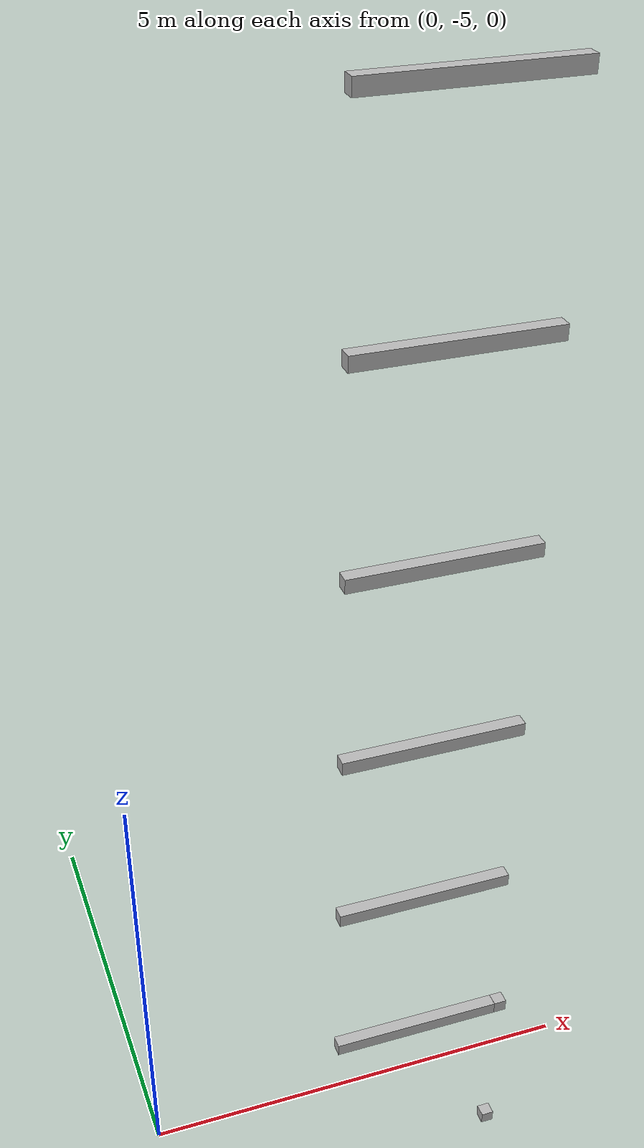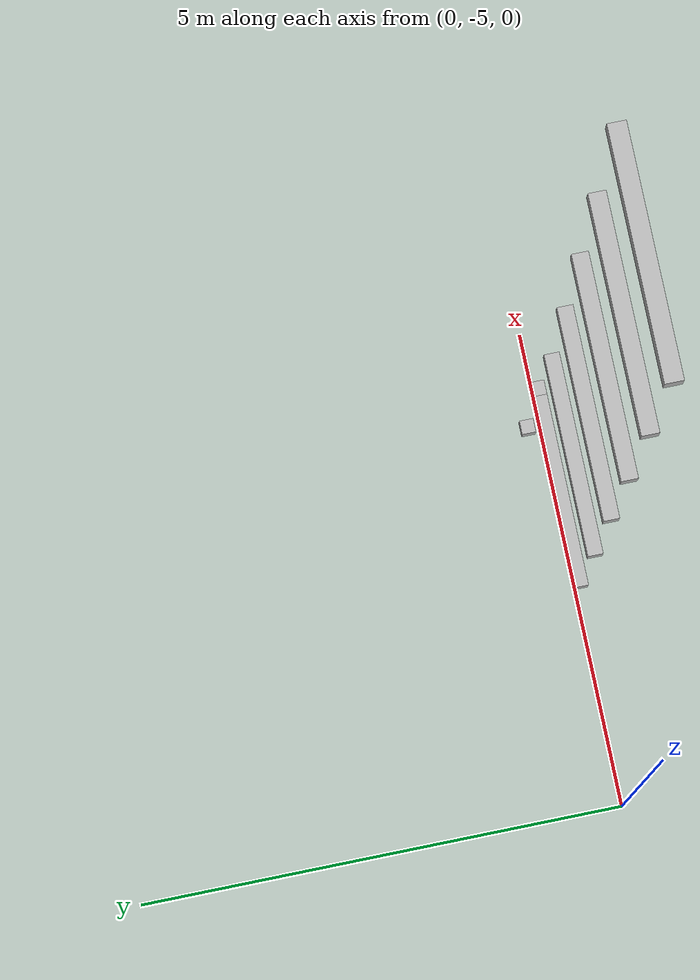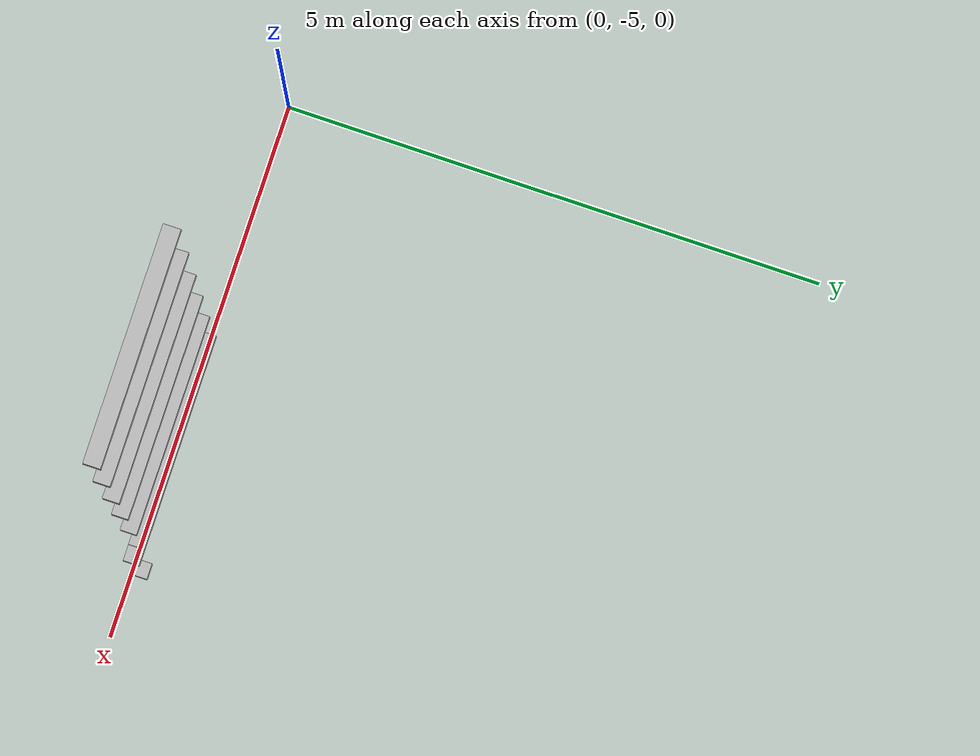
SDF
<sdf version="1.7">
 <world name="default">
  <model name="orthogonal_747_2.000.15_TS">
   <static>1</static>
   <link name="u_link_0_0_5">
    <inertial>
     <mass>1</mass>
     <inertia>
      <ixx>0.166667</ixx>
      <ixy>0</ixy>
      <ixz>0</ixz>
      <iyy>0.166667</iyy>
      <iyz>0</iyz>
      <izz>0.166667</izz>
     </inertia>
    </inertial>
    <pose>10.75 0 1.075 0 -0 0</pose>
    <visual name="visual_0">
     <laser_retro>120</laser_retro>
     <geometry><box><size>0.15 1e-06 0.15</size></box></geometry>
     <material>
      <script><name>Gazebo/Grey</name><uri>file://media/materials/scripts/gazebo.material</uri></script>
      <shader type="pixel"><normal_map>__default__</normal_map></shader>
      <ambient>0.678 0.498 0.659 1</ambient>
      <diffuse>0.7 0.7 0.7 1</diffuse>
      <specular>0.01 0.01 0.01 1</specular>
      <emissive>0 0 0 1</emissive>
     </material>
     <pose>0 -0.075 0 0 -0 0</pose>
     <transparency>1</transparency>
    </visual>
    <visual name="visual_1">
     <laser_retro>121</laser_retro>
     <geometry><box><size>0.15 1e-06 0.15</size></box></geometry>
     <material>
      <script><name>Gazebo/Grey</name><uri>file://media/materials/scripts/gazebo.material</uri></script>
      <shader type="pixel"><normal_map>__default__</normal_map></shader>
      <ambient>0.447 0.624 0.812 1</ambient>
      <diffuse>0.7 0.7 0.7 1</diffuse>
      <specular>0.01 0.01 0.01 1</specular>
      <emissive>0 0 0 1</emissive>
     </material>
     <pose>0 0.075 0 0 -0 0</pose>
     <transparency>1</transparency>
    </visual>
    <visual name="visual_2">
     <laser_retro>122</laser_retro>
     <geometry><box><size>0.15 0.15 1e-06</size></box></geometry>
     <material>
      <script><name>Gazebo/Grey</name><uri>file://media/materials/scripts/gazebo.material</uri></script>
      <shader type="pixel"><normal_map>__default__</normal_map></shader>
      <ambient>0.988 0.686 0.243 1</ambient>
      <diffuse>0.7 0.7 0.7 1</diffuse>
      <specular>0.01 0.01 0.01 1</specular>
      <emissive>0 0 0 1</emissive>
     </material>
     <pose>0 0 -0.075 0 -0 0</pose>
     <transparency>1</transparency>
    </visual>
    <visual name="visual_3">
     <laser_retro>123</laser_retro>
     <geometry><box><size>1e-06 0.15 0.15</size></box></geometry>
     <material>
      <script><name>Gazebo/Grey</name><uri>file://media/materials/scripts/gazebo.material</uri></script>
      <shader type="pixel"><normal_map>__default__</normal_map></shader>
      <ambient>0.988 0.914 0.31 1</ambient>
      <diffuse>0.7 0.7 0.7 1</diffuse>
      <specular>0.01 0.01 0.01 1</specular>
      <emissive>0 0 0 1</emissive>
     </material>
     <pose>0.075 0 0 0 -0 0</pose>
     <transparency>1</transparency>
    </visual>
    <visual name="visual_4">
     <laser_retro>124</laser_retro>
     <geometry><box><size>0.15 0.15 1e-06</size></box></geometry>
     <material>
      <script><name>Gazebo/Grey</name><uri>file://media/materials/scripts/gazebo.material</uri></script>
      <shader type="pixel"><normal_map>__default__</normal_map></shader>
      <ambient>0.937 0.161 0.161 1</ambient>
      <diffuse>0.7 0.7 0.7 1</diffuse>
      <specular>0.01 0.01 0.01 1</specular>
      <emissive>0 0 0 1</emissive>
     </material>
     <pose>0 0 0.075 0 -0 0</pose>
     <transparency>1</transparency>
    </visual>
    <visual name="visual_5">
     <laser_retro>125</laser_retro>
     <geometry><box><size>1e-06 0.15 0.15</size></box></geometry>
     <material>
      <script><name>Gazebo/Grey</name><uri>file://media/materials/scripts/gazebo.material</uri></script>
      <shader type="pixel"><normal_map>__default__</normal_map></shader>
      <ambient>0.541 0.886 0.204 1</ambient>
      <diffuse>0.7 0.7 0.7 1</diffuse>
      <specular>0.01 0.01 0.01 1</specular>
      <emissive>0 0 0 1</emissive>
     </material>
     <pose>-0.075 0 0 0 -0 0</pose>
     <transparency>1</transparency>
    </visual>
    <visual name="visual_texture">
     <geometry><box><size>0.149985 0.149985 0.149985</size></box></geometry>
     <material>
      <script>
       <uri>model://BASE_MODELS/simple_block_v2_textured/materials/scripts</uri>
       <uri>model://BASE_MODELS/simple_block_v2_textured/materials/textures</uri>
       <name>metal</name>
      </script>
     </material>
     <laser_retro>126</laser_retro>
    </visual>
    <collision name="collision">
     <geometry><box><size>0.15 0.15 0.15</size></box></geometry>
     <surface>
      <friction>
       <ode><mu>1</mu><mu2>1</mu2><fdir1>0 0 0</fdir1><slip1>0</slip1><slip2>0</slip2></ode>
       <torsional>
        <coefficient>1</coefficient>
        <patch_radius>0</patch_radius>
        <surface_radius>0</surface_radius>
        <use_patch_radius>1</use_patch_radius>
        <ode><slip>0</slip></ode>
       </torsional>
      </friction>
      <bounce><restitution_coefficient>0</restitution_coefficient><threshold>1e+06</threshold></bounce>
      <contact>
       <collide_without_contact>0</collide_without_contact>
       <collide_without_contact_bitmask>1</collide_without_contact_bitmask>
       <collide_bitmask>1</collide_bitmask>
       <ode>
        <soft_cfm>0</soft_cfm>
        <soft_erp>0.2</soft_erp>
        <kp>1e+13</kp>
        <kd>1</kd>
        <max_vel>0.01</max_vel>
        <min_depth>0</min_depth>
       </ode>
       <bullet>
        <split_impulse>1</split_impulse>
        <split_impulse_penetration_threshold>-0.01</split_impulse_penetration_threshold>
        <soft_cfm>0</soft_cfm>
        <soft_erp>0.2</soft_erp>
        <kp>1e+13</kp>
        <kd>1</kd>
       </bullet>
      </contact>
     </surface>
    </collision>
   </link>
   <link name="x_link_1_0_4">
    <inertial>
     <mass>1</mass>
     <inertia>
      <ixx>0.166667</ixx>
      <ixy>0</ixy>
      <ixz>0</ixz>
      <iyy>0.166667</iyy>
      <iyz>0</iyz>
      <izz>0.166667</izz>
     </inertia>
    </inertial>
    <pose>9.675 0 3.225 0 -0 0</pose>
    <visual name="visual_0">
     <laser_retro>862</laser_retro>
     <geometry><box><size>2 1e-06 0.15</size></box></geometry>
     <material>
      <script><name>Gazebo/Grey</name><uri>file://media/materials/scripts/gazebo.material</uri></script>
      <shader type="pixel"><normal_map>__default__</normal_map></shader>
      <ambient>0.678 0.498 0.659 1</ambient>
      <diffuse>0.7 0.7 0.7 1</diffuse>
      <specular>0.01 0.01 0.01 1</specular>
      <emissive>0 0 0 1</emissive>
     </material>
     <pose>0 -0.075 0 0 -0 0</pose>
     <transparency>1</transparency>
    </visual>
    <visual name="visual_1">
     <laser_retro>863</laser_retro>
     <geometry><box><size>2 1e-06 0.15</size></box></geometry>
     <material>
      <script><name>Gazebo/Grey</name><uri>file://media/materials/scripts/gazebo.material</uri></script>
      <shader type="pixel"><normal_map>__default__</normal_map></shader>
      <ambient>0.447 0.624 0.812 1</ambient>
      <diffuse>0.7 0.7 0.7 1</diffuse>
      <specular>0.01 0.01 0.01 1</specular>
      <emissive>0 0 0 1</emissive>
     </material>
     <pose>0 0.075 0 0 -0 0</pose>
     <transparency>1</transparency>
    </visual>
    <visual name="visual_2">
     <laser_retro>864</laser_retro>
     <geometry><box><size>2 0.15 1e-06</size></box></geometry>
     <material>
      <script><name>Gazebo/Grey</name><uri>file://media/materials/scripts/gazebo.material</uri></script>
      <shader type="pixel"><normal_map>__default__</normal_map></shader>
      <ambient>0.988 0.686 0.243 1</ambient>
      <diffuse>0.7 0.7 0.7 1</diffuse>
      <specular>0.01 0.01 0.01 1</specular>
      <emissive>0 0 0 1</emissive>
     </material>
     <pose>0 0 -0.075 0 -0 0</pose>
     <transparency>1</transparency>
    </visual>
    <visual name="visual_3">
     <laser_retro>865</laser_retro>
     <geometry><box><size>1e-06 0.15 0.15</size></box></geometry>
     <material>
      <script><name>Gazebo/Grey</name><uri>file://media/materials/scripts/gazebo.material</uri></script>
      <shader type="pixel"><normal_map>__default__</normal_map></shader>
      <ambient>0.988 0.914 0.31 1</ambient>
      <diffuse>0.7 0.7 0.7 1</diffuse>
      <specular>0.01 0.01 0.01 1</specular>
      <emissive>0 0 0 1</emissive>
     </material>
     <pose>1 0 0 0 -0 0</pose>
     <transparency>1</transparency>
    </visual>
    <visual name="visual_4">
     <laser_retro>866</laser_retro>
     <geometry><box><size>2 0.15 1e-06</size></box></geometry>
     <material>
      <script><name>Gazebo/Grey</name><uri>file://media/materials/scripts/gazebo.material</uri></script>
      <shader type="pixel"><normal_map>__default__</normal_map></shader>
      <ambient>0.937 0.161 0.161 1</ambient>
      <diffuse>0.7 0.7 0.7 1</diffuse>
      <specular>0.01 0.01 0.01 1</specular>
      <emissive>0 0 0 1</emissive>
     </material>
     <pose>0 0 0.075 0 -0 0</pose>
     <transparency>1</transparency>
    </visual>
    <visual name="visual_5">
     <laser_retro>867</laser_retro>
     <geometry><box><size>1e-06 0.15 0.15</size></box></geometry>
     <material>
      <script><name>Gazebo/Grey</name><uri>file://media/materials/scripts/gazebo.material</uri></script>
      <shader type="pixel"><normal_map>__default__</normal_map></shader>
      <ambient>0.541 0.886 0.204 1</ambient>
      <diffuse>0.7 0.7 0.7 1</diffuse>
      <specular>0.01 0.01 0.01 1</specular>
      <emissive>0 0 0 1</emissive>
     </material>
     <pose>-1 0 0 0 -0 0</pose>
     <transparency>1</transparency>
    </visual>
    <visual name="visual_texture">
     <geometry><box><size>1.9998 0.149985 0.149985</size></box></geometry>
     <material>
      <script>
       <uri>model://BASE_MODELS/simple_block_v2_textured/materials/scripts</uri>
       <uri>model://BASE_MODELS/simple_block_v2_textured/materials/textures</uri>
       <name>metal</name>
      </script>
     </material>
     <laser_retro>868</laser_retro>
    </visual>
    <collision name="collision">
     <geometry><box><size>2 0.15 0.15</size></box></geometry>
     <surface>
      <friction>
       <ode><mu>1</mu><mu2>1</mu2><fdir1>0 0 0</fdir1><slip1>0</slip1><slip2>0</slip2></ode>
       <torsional>
        <coefficient>1</coefficient>
        <patch_radius>0</patch_radius>
        <surface_radius>0</surface_radius>
        <use_patch_radius>1</use_patch_radius>
        <ode><slip>0</slip></ode>
       </torsional>
      </friction>
      <bounce><restitution_coefficient>0</restitution_coefficient><threshold>1e+06</threshold></bounce>
      <contact>
       <collide_without_contact>0</collide_without_contact>
       <collide_without_contact_bitmask>1</collide_without_contact_bitmask>
       <collide_bitmask>1</collide_bitmask>
       <ode>
        <soft_cfm>0</soft_cfm>
        <soft_erp>0.2</soft_erp>
        <kp>1e+13</kp>
        <kd>1</kd>
        <max_vel>0.01</max_vel>
        <min_depth>0</min_depth>
       </ode>
       <bullet>
        <split_impulse>1</split_impulse>
        <split_impulse_penetration_threshold>-0.01</split_impulse_penetration_threshold>
        <soft_cfm>0</soft_cfm>
        <soft_erp>0.2</soft_erp>
        <kp>1e+13</kp>
        <kd>1</kd>
       </bullet>
      </contact>
     </surface>
    </collision>
   </link>
   <link name="u_link_1_0_5">
    <inertial>
     <mass>1</mass>
     <inertia>
      <ixx>0.166667</ixx>
      <ixy>0</ixy>
      <ixz>0</ixz>
      <iyy>0.166667</iyy>
      <iyz>0</iyz>
      <izz>0.166667</izz>
     </inertia>
    </inertial>
    <pose>10.75 0 3.225 0 -0 0</pose>
    <visual name="visual_0">
     <laser_retro>904</laser_retro>
     <geometry><box><size>0.15 1e-06 0.15</size></box></geometry>
     <material>
      <script><name>Gazebo/Grey</name><uri>file://media/materials/scripts/gazebo.material</uri></script>
      <shader type="pixel"><normal_map>__default__</normal_map></shader>
      <ambient>0.678 0.498 0.659 1</ambient>
      <diffuse>0.7 0.7 0.7 1</diffuse>
      <specular>0.01 0.01 0.01 1</specular>
      <emissive>0 0 0 1</emissive>
     </material>
     <pose>0 -0.075 0 0 -0 0</pose>
     <transparency>1</transparency>
    </visual>
    <visual name="visual_1">
     <laser_retro>905</laser_retro>
     <geometry><box><size>0.15 1e-06 0.15</size></box></geometry>
     <material>
      <script><name>Gazebo/Grey</name><uri>file://media/materials/scripts/gazebo.material</uri></script>
      <shader type="pixel"><normal_map>__default__</normal_map></shader>
      <ambient>0.447 0.624 0.812 1</ambient>
      <diffuse>0.7 0.7 0.7 1</diffuse>
      <specular>0.01 0.01 0.01 1</specular>
      <emissive>0 0 0 1</emissive>
     </material>
     <pose>0 0.075 0 0 -0 0</pose>
     <transparency>1</transparency>
    </visual>
    <visual name="visual_2">
     <laser_retro>906</laser_retro>
     <geometry><box><size>0.15 0.15 1e-06</size></box></geometry>
     <material>
      <script><name>Gazebo/Grey</name><uri>file://media/materials/scripts/gazebo.material</uri></script>
      <shader type="pixel"><normal_map>__default__</normal_map></shader>
      <ambient>0.988 0.686 0.243 1</ambient>
      <diffuse>0.7 0.7 0.7 1</diffuse>
      <specular>0.01 0.01 0.01 1</specular>
      <emissive>0 0 0 1</emissive>
     </material>
     <pose>0 0 -0.075 0 -0 0</pose>
     <transparency>1</transparency>
    </visual>
    <visual name="visual_3">
     <laser_retro>907</laser_retro>
     <geometry><box><size>1e-06 0.15 0.15</size></box></geometry>
     <material>
      <script><name>Gazebo/Grey</name><uri>file://media/materials/scripts/gazebo.material</uri></script>
      <shader type="pixel"><normal_map>__default__</normal_map></shader>
      <ambient>0.988 0.914 0.31 1</ambient>
      <diffuse>0.7 0.7 0.7 1</diffuse>
      <specular>0.01 0.01 0.01 1</specular>
      <emissive>0 0 0 1</emissive>
     </material>
     <pose>0.075 0 0 0 -0 0</pose>
     <transparency>1</transparency>
    </visual>
    <visual name="visual_4">
     <laser_retro>908</laser_retro>
     <geometry><box><size>0.15 0.15 1e-06</size></box></geometry>
     <material>
      <script><name>Gazebo/Grey</name><uri>file://media/materials/scripts/gazebo.material</uri></script>
      <shader type="pixel"><normal_map>__default__</normal_map></shader>
      <ambient>0.937 0.161 0.161 1</ambient>
      <diffuse>0.7 0.7 0.7 1</diffuse>
      <specular>0.01 0.01 0.01 1</specular>
      <emissive>0 0 0 1</emissive>
     </material>
     <pose>0 0 0.075 0 -0 0</pose>
     <transparency>1</transparency>
    </visual>
    <visual name="visual_5">
     <laser_retro>909</laser_retro>
     <geometry><box><size>1e-06 0.15 0.15</size></box></geometry>
     <material>
      <script><name>Gazebo/Grey</name><uri>file://media/materials/scripts/gazebo.material</uri></script>
      <shader type="pixel"><normal_map>__default__</normal_map></shader>
      <ambient>0.541 0.886 0.204 1</ambient>
      <diffuse>0.7 0.7 0.7 1</diffuse>
      <specular>0.01 0.01 0.01 1</specular>
      <emissive>0 0 0 1</emissive>
     </material>
     <pose>-0.075 0 0 0 -0 0</pose>
     <transparency>1</transparency>
    </visual>
    <visual name="visual_texture">
     <geometry><box><size>0.149985 0.149985 0.149985</size></box></geometry>
     <material>
      <script>
       <uri>model://BASE_MODELS/simple_block_v2_textured/materials/scripts</uri>
       <uri>model://BASE_MODELS/simple_block_v2_textured/materials/textures</uri>
       <name>metal</name>
      </script>
     </material>
     <laser_retro>910</laser_retro>
    </visual>
    <collision name="collision">
     <geometry><box><size>0.15 0.15 0.15</size></box></geometry>
     <surface>
      <friction>
       <ode><mu>1</mu><mu2>1</mu2><fdir1>0 0 0</fdir1><slip1>0</slip1><slip2>0</slip2></ode>
       <torsional>
        <coefficient>1</coefficient>
        <patch_radius>0</patch_radius>
        <surface_radius>0</surface_radius>
        <use_patch_radius>1</use_patch_radius>
        <ode><slip>0</slip></ode>
       </torsional>
      </friction>
      <bounce><restitution_coefficient>0</restitution_coefficient><threshold>1e+06</threshold></bounce>
      <contact>
       <collide_without_contact>0</collide_without_contact>
       <collide_without_contact_bitmask>1</collide_without_contact_bitmask>
       <collide_bitmask>1</collide_bitmask>
       <ode>
        <soft_cfm>0</soft_cfm>
        <soft_erp>0.2</soft_erp>
        <kp>1e+13</kp>
        <kd>1</kd>
        <max_vel>0.01</max_vel>
        <min_depth>0</min_depth>
       </ode>
       <bullet>
        <split_impulse>1</split_impulse>
        <split_impulse_penetration_threshold>-0.01</split_impulse_penetration_threshold>
        <soft_cfm>0</soft_cfm>
        <soft_erp>0.2</soft_erp>
        <kp>1e+13</kp>
        <kd>1</kd>
       </bullet>
      </contact>
     </surface>
    </collision>
   </link>
   <link name="x_link_2_0_4">
    <inertial>
     <mass>1</mass>
     <inertia>
      <ixx>0.166667</ixx>
      <ixy>0</ixy>
      <ixz>0</ixz>
      <iyy>0.166667</iyy>
      <iyz>0</iyz>
      <izz>0.166667</izz>
     </inertia>
    </inertial>
    <pose>9.675 0 5.375 0 -0 0</pose>
    <visual name="visual_0">
     <laser_retro>1765</laser_retro>
     <geometry><box><size>2 1e-06 0.15</size></box></geometry>
     <material>
      <script><name>Gazebo/Grey</name><uri>file://media/materials/scripts/gazebo.material</uri></script>
      <shader type="pixel"><normal_map>__default__</normal_map></shader>
      <ambient>0.678 0.498 0.659 1</ambient>
      <diffuse>0.7 0.7 0.7 1</diffuse>
      <specular>0.01 0.01 0.01 1</specular>
      <emissive>0 0 0 1</emissive>
     </material>
     <pose>0 -0.075 0 0 -0 0</pose>
     <transparency>1</transparency>
    </visual>
    <visual name="visual_1">
     <laser_retro>1766</laser_retro>
     <geometry><box><size>2 1e-06 0.15</size></box></geometry>
     <material>
      <script><name>Gazebo/Grey</name><uri>file://media/materials/scripts/gazebo.material</uri></script>
      <shader type="pixel"><normal_map>__default__</normal_map></shader>
      <ambient>0.447 0.624 0.812 1</ambient>
      <diffuse>0.7 0.7 0.7 1</diffuse>
      <specular>0.01 0.01 0.01 1</specular>
      <emissive>0 0 0 1</emissive>
     </material>
     <pose>0 0.075 0 0 -0 0</pose>
     <transparency>1</transparency>
    </visual>
    <visual name="visual_2">
     <laser_retro>1767</laser_retro>
     <geometry><box><size>2 0.15 1e-06</size></box></geometry>
     <material>
      <script><name>Gazebo/Grey</name><uri>file://media/materials/scripts/gazebo.material</uri></script>
      <shader type="pixel"><normal_map>__default__</normal_map></shader>
      <ambient>0.988 0.686 0.243 1</ambient>
      <diffuse>0.7 0.7 0.7 1</diffuse>
      <specular>0.01 0.01 0.01 1</specular>
      <emissive>0 0 0 1</emissive>
     </material>
     <pose>0 0 -0.075 0 -0 0</pose>
     <transparency>1</transparency>
    </visual>
    <visual name="visual_3">
     <laser_retro>1768</laser_retro>
     <geometry><box><size>1e-06 0.15 0.15</size></box></geometry>
     <material>
      <script><name>Gazebo/Grey</name><uri>file://media/materials/scripts/gazebo.material</uri></script>
      <shader type="pixel"><normal_map>__default__</normal_map></shader>
      <ambient>0.988 0.914 0.31 1</ambient>
      <diffuse>0.7 0.7 0.7 1</diffuse>
      <specular>0.01 0.01 0.01 1</specular>
      <emissive>0 0 0 1</emissive>
     </material>
     <pose>1 0 0 0 -0 0</pose>
     <transparency>1</transparency>
    </visual>
    <visual name="visual_4">
     <laser_retro>1769</laser_retro>
     <geometry><box><size>2 0.15 1e-06</size></box></geometry>
     <material>
      <script><name>Gazebo/Grey</name><uri>file://media/materials/scripts/gazebo.material</uri></script>
      <shader type="pixel"><normal_map>__default__</normal_map></shader>
      <ambient>0.937 0.161 0.161 1</ambient>
      <diffuse>0.7 0.7 0.7 1</diffuse>
      <specular>0.01 0.01 0.01 1</specular>
      <emissive>0 0 0 1</emissive>
     </material>
     <pose>0 0 0.075 0 -0 0</pose>
     <transparency>1</transparency>
    </visual>
    <visual name="visual_5">
     <laser_retro>1770</laser_retro>
     <geometry><box><size>1e-06 0.15 0.15</size></box></geometry>
     <material>
      <script><name>Gazebo/Grey</name><uri>file://media/materials/scripts/gazebo.material</uri></script>
      <shader type="pixel"><normal_map>__default__</normal_map></shader>
      <ambient>0.541 0.886 0.204 1</ambient>
      <diffuse>0.7 0.7 0.7 1</diffuse>
      <specular>0.01 0.01 0.01 1</specular>
      <emissive>0 0 0 1</emissive>
     </material>
     <pose>-1 0 0 0 -0 0</pose>
     <transparency>1</transparency>
    </visual>
    <visual name="visual_texture">
     <geometry><box><size>1.9998 0.149985 0.149985</size></box></geometry>
     <material>
      <script>
       <uri>model://BASE_MODELS/simple_block_v2_textured/materials/scripts</uri>
       <uri>model://BASE_MODELS/simple_block_v2_textured/materials/textures</uri>
       <name>metal</name>
      </script>
     </material>
     <laser_retro>1771</laser_retro>
    </visual>
    <collision name="collision">
     <geometry><box><size>2 0.15 0.15</size></box></geometry>
     <surface>
      <friction>
       <ode><mu>1</mu><mu2>1</mu2><fdir1>0 0 0</fdir1><slip1>0</slip1><slip2>0</slip2></ode>
       <torsional>
        <coefficient>1</coefficient>
        <patch_radius>0</patch_radius>
        <surface_radius>0</surface_radius>
        <use_patch_radius>1</use_patch_radius>
        <ode><slip>0</slip></ode>
       </torsional>
      </friction>
      <bounce><restitution_coefficient>0</restitution_coefficient><threshold>1e+06</threshold></bounce>
      <contact>
       <collide_without_contact>0</collide_without_contact>
       <collide_without_contact_bitmask>1</collide_without_contact_bitmask>
       <collide_bitmask>1</collide_bitmask>
       <ode>
        <soft_cfm>0</soft_cfm>
        <soft_erp>0.2</soft_erp>
        <kp>1e+13</kp>
        <kd>1</kd>
        <max_vel>0.01</max_vel>
        <min_depth>0</min_depth>
       </ode>
       <bullet>
        <split_impulse>1</split_impulse>
        <split_impulse_penetration_threshold>-0.01</split_impulse_penetration_threshold>
        <soft_cfm>0</soft_cfm>
        <soft_erp>0.2</soft_erp>
        <kp>1e+13</kp>
        <kd>1</kd>
       </bullet>
      </contact>
     </surface>
    </collision>
   </link>
   <link name="x_link_3_0_4">
    <inertial>
     <mass>1</mass>
     <inertia>
      <ixx>0.166667</ixx>
      <ixy>0</ixy>
      <ixz>0</ixz>
      <iyy>0.166667</iyy>
      <iyz>0</iyz>
      <izz>0.166667</izz>
     </inertia>
    </inertial>
    <pose>9.675 0 7.525 0 -0 0</pose>
    <visual name="visual_0">
     <laser_retro>2668</laser_retro>
     <geometry><box><size>2 1e-06 0.15</size></box></geometry>
     <material>
      <script><name>Gazebo/Grey</name><uri>file://media/materials/scripts/gazebo.material</uri></script>
      <shader type="pixel"><normal_map>__default__</normal_map></shader>
      <ambient>0.678 0.498 0.659 1</ambient>
      <diffuse>0.7 0.7 0.7 1</diffuse>
      <specular>0.01 0.01 0.01 1</specular>
      <emissive>0 0 0 1</emissive>
     </material>
     <pose>0 -0.075 0 0 -0 0</pose>
     <transparency>1</transparency>
    </visual>
    <visual name="visual_1">
     <laser_retro>2669</laser_retro>
     <geometry><box><size>2 1e-06 0.15</size></box></geometry>
     <material>
      <script><name>Gazebo/Grey</name><uri>file://media/materials/scripts/gazebo.material</uri></script>
      <shader type="pixel"><normal_map>__default__</normal_map></shader>
      <ambient>0.447 0.624 0.812 1</ambient>
      <diffuse>0.7 0.7 0.7 1</diffuse>
      <specular>0.01 0.01 0.01 1</specular>
      <emissive>0 0 0 1</emissive>
     </material>
     <pose>0 0.075 0 0 -0 0</pose>
     <transparency>1</transparency>
    </visual>
    <visual name="visual_2">
     <laser_retro>2670</laser_retro>
     <geometry><box><size>2 0.15 1e-06</size></box></geometry>
     <material>
      <script><name>Gazebo/Grey</name><uri>file://media/materials/scripts/gazebo.material</uri></script>
      <shader type="pixel"><normal_map>__default__</normal_map></shader>
      <ambient>0.988 0.686 0.243 1</ambient>
      <diffuse>0.7 0.7 0.7 1</diffuse>
      <specular>0.01 0.01 0.01 1</specular>
      <emissive>0 0 0 1</emissive>
     </material>
     <pose>0 0 -0.075 0 -0 0</pose>
     <transparency>1</transparency>
    </visual>
    <visual name="visual_3">
     <laser_retro>2671</laser_retro>
     <geometry><box><size>1e-06 0.15 0.15</size></box></geometry>
     <material>
      <script><name>Gazebo/Grey</name><uri>file://media/materials/scripts/gazebo.material</uri></script>
      <shader type="pixel"><normal_map>__default__</normal_map></shader>
      <ambient>0.988 0.914 0.31 1</ambient>
      <diffuse>0.7 0.7 0.7 1</diffuse>
      <specular>0.01 0.01 0.01 1</specular>
      <emissive>0 0 0 1</emissive>
     </material>
     <pose>1 0 0 0 -0 0</pose>
     <transparency>1</transparency>
    </visual>
    <visual name="visual_4">
     <laser_retro>2672</laser_retro>
     <geometry><box><size>2 0.15 1e-06</size></box></geometry>
     <material>
      <script><name>Gazebo/Grey</name><uri>file://media/materials/scripts/gazebo.material</uri></script>
      <shader type="pixel"><normal_map>__default__</normal_map></shader>
      <ambient>0.937 0.161 0.161 1</ambient>
      <diffuse>0.7 0.7 0.7 1</diffuse>
      <specular>0.01 0.01 0.01 1</specular>
      <emissive>0 0 0 1</emissive>
     </material>
     <pose>0 0 0.075 0 -0 0</pose>
     <transparency>1</transparency>
    </visual>
    <visual name="visual_5">
     <laser_retro>2673</laser_retro>
     <geometry><box><size>1e-06 0.15 0.15</size></box></geometry>
     <material>
      <script><name>Gazebo/Grey</name><uri>file://media/materials/scripts/gazebo.material</uri></script>
      <shader type="pixel"><normal_map>__default__</normal_map></shader>
      <ambient>0.541 0.886 0.204 1</ambient>
      <diffuse>0.7 0.7 0.7 1</diffuse>
      <specular>0.01 0.01 0.01 1</specular>
      <emissive>0 0 0 1</emissive>
     </material>
     <pose>-1 0 0 0 -0 0</pose>
     <transparency>1</transparency>
    </visual>
    <visual name="visual_texture">
     <geometry><box><size>1.9998 0.149985 0.149985</size></box></geometry>
     <material>
      <script>
       <uri>model://BASE_MODELS/simple_block_v2_textured/materials/scripts</uri>
       <uri>model://BASE_MODELS/simple_block_v2_textured/materials/textures</uri>
       <name>metal</name>
      </script>
     </material>
     <laser_retro>2674</laser_retro>
    </visual>
    <collision name="collision">
     <geometry><box><size>2 0.15 0.15</size></box></geometry>
     <surface>
      <friction>
       <ode><mu>1</mu><mu2>1</mu2><fdir1>0 0 0</fdir1><slip1>0</slip1><slip2>0</slip2></ode>
       <torsional>
        <coefficient>1</coefficient>
        <patch_radius>0</patch_radius>
        <surface_radius>0</surface_radius>
        <use_patch_radius>1</use_patch_radius>
        <ode><slip>0</slip></ode>
       </torsional>
      </friction>
      <bounce><restitution_coefficient>0</restitution_coefficient><threshold>1e+06</threshold></bounce>
      <contact>
       <collide_without_contact>0</collide_without_contact>
       <collide_without_contact_bitmask>1</collide_without_contact_bitmask>
       <collide_bitmask>1</collide_bitmask>
       <ode>
        <soft_cfm>0</soft_cfm>
        <soft_erp>0.2</soft_erp>
        <kp>1e+13</kp>
        <kd>1</kd>
        <max_vel>0.01</max_vel>
        <min_depth>0</min_depth>
       </ode>
       <bullet>
        <split_impulse>1</split_impulse>
        <split_impulse_penetration_threshold>-0.01</split_impulse_penetration_threshold>
        <soft_cfm>0</soft_cfm>
        <soft_erp>0.2</soft_erp>
        <kp>1e+13</kp>
        <kd>1</kd>
       </bullet>
      </contact>
     </surface>
    </collision>
   </link>
   <link name="x_link_4_0_4">
    <inertial>
     <mass>1</mass>
     <inertia>
      <ixx>0.166667</ixx>
      <ixy>0</ixy>
      <ixz>0</ixz>
      <iyy>0.166667</iyy>
      <iyz>0</iyz>
      <izz>0.166667</izz>
     </inertia>
    </inertial>
    <pose>9.675 0 9.675 0 -0 0</pose>
    <visual name="visual_0">
     <laser_retro>3571</laser_retro>
     <geometry><box><size>2 1e-06 0.15</size></box></geometry>
     <material>
      <script><name>Gazebo/Grey</name><uri>file://media/materials/scripts/gazebo.material</uri></script>
      <shader type="pixel"><normal_map>__default__</normal_map></shader>
      <ambient>0.678 0.498 0.659 1</ambient>
      <diffuse>0.7 0.7 0.7 1</diffuse>
      <specular>0.01 0.01 0.01 1</specular>
      <emissive>0 0 0 1</emissive>
     </material>
     <pose>0 -0.075 0 0 -0 0</pose>
     <transparency>1</transparency>
    </visual>
    <visual name="visual_1">
     <laser_retro>3572</laser_retro>
     <geometry><box><size>2 1e-06 0.15</size></box></geometry>
     <material>
      <script><name>Gazebo/Grey</name><uri>file://media/materials/scripts/gazebo.material</uri></script>
      <shader type="pixel"><normal_map>__default__</normal_map></shader>
      <ambient>0.447 0.624 0.812 1</ambient>
      <diffuse>0.7 0.7 0.7 1</diffuse>
      <specular>0.01 0.01 0.01 1</specular>
      <emissive>0 0 0 1</emissive>
     </material>
     <pose>0 0.075 0 0 -0 0</pose>
     <transparency>1</transparency>
    </visual>
    <visual name="visual_2">
     <laser_retro>3573</laser_retro>
     <geometry><box><size>2 0.15 1e-06</size></box></geometry>
     <material>
      <script><name>Gazebo/Grey</name><uri>file://media/materials/scripts/gazebo.material</uri></script>
      <shader type="pixel"><normal_map>__default__</normal_map></shader>
      <ambient>0.988 0.686 0.243 1</ambient>
      <diffuse>0.7 0.7 0.7 1</diffuse>
      <specular>0.01 0.01 0.01 1</specular>
      <emissive>0 0 0 1</emissive>
     </material>
     <pose>0 0 -0.075 0 -0 0</pose>
     <transparency>1</transparency>
    </visual>
    <visual name="visual_3">
     <laser_retro>3574</laser_retro>
     <geometry><box><size>1e-06 0.15 0.15</size></box></geometry>
     <material>
      <script><name>Gazebo/Grey</name><uri>file://media/materials/scripts/gazebo.material</uri></script>
      <shader type="pixel"><normal_map>__default__</normal_map></shader>
      <ambient>0.988 0.914 0.31 1</ambient>
      <diffuse>0.7 0.7 0.7 1</diffuse>
      <specular>0.01 0.01 0.01 1</specular>
      <emissive>0 0 0 1</emissive>
     </material>
     <pose>1 0 0 0 -0 0</pose>
     <transparency>1</transparency>
    </visual>
    <visual name="visual_4">
     <laser_retro>3575</laser_retro>
     <geometry><box><size>2 0.15 1e-06</size></box></geometry>
     <material>
      <script><name>Gazebo/Grey</name><uri>file://media/materials/scripts/gazebo.material</uri></script>
      <shader type="pixel"><normal_map>__default__</normal_map></shader>
      <ambient>0.937 0.161 0.161 1</ambient>
      <diffuse>0.7 0.7 0.7 1</diffuse>
      <specular>0.01 0.01 0.01 1</specular>
      <emissive>0 0 0 1</emissive>
     </material>
     <pose>0 0 0.075 0 -0 0</pose>
     <transparency>1</transparency>
    </visual>
    <visual name="visual_5">
     <laser_retro>3576</laser_retro>
     <geometry><box><size>1e-06 0.15 0.15</size></box></geometry>
     <material>
      <script><name>Gazebo/Grey</name><uri>file://media/materials/scripts/gazebo.material</uri></script>
      <shader type="pixel"><normal_map>__default__</normal_map></shader>
      <ambient>0.541 0.886 0.204 1</ambient>
      <diffuse>0.7 0.7 0.7 1</diffuse>
      <specular>0.01 0.01 0.01 1</specular>
      <emissive>0 0 0 1</emissive>
     </material>
     <pose>-1 0 0 0 -0 0</pose>
     <transparency>1</transparency>
    </visual>
    <visual name="visual_texture">
     <geometry><box><size>1.9998 0.149985 0.149985</size></box></geometry>
     <material>
      <script>
       <uri>model://BASE_MODELS/simple_block_v2_textured/materials/scripts</uri>
       <uri>model://BASE_MODELS/simple_block_v2_textured/materials/textures</uri>
       <name>metal</name>
      </script>
     </material>
     <laser_retro>3577</laser_retro>
    </visual>
    <collision name="collision">
     <geometry><box><size>2 0.15 0.15</size></box></geometry>
     <surface>
      <friction>
       <ode><mu>1</mu><mu2>1</mu2><fdir1>0 0 0</fdir1><slip1>0</slip1><slip2>0</slip2></ode>
       <torsional>
        <coefficient>1</coefficient>
        <patch_radius>0</patch_radius>
        <surface_radius>0</surface_radius>
        <use_patch_radius>1</use_patch_radius>
        <ode><slip>0</slip></ode>
       </torsional>
      </friction>
      <bounce><restitution_coefficient>0</restitution_coefficient><threshold>1e+06</threshold></bounce>
      <contact>
       <collide_without_contact>0</collide_without_contact>
       <collide_without_contact_bitmask>1</collide_without_contact_bitmask>
       <collide_bitmask>1</collide_bitmask>
       <ode>
        <soft_cfm>0</soft_cfm>
        <soft_erp>0.2</soft_erp>
        <kp>1e+13</kp>
        <kd>1</kd>
        <max_vel>0.01</max_vel>
        <min_depth>0</min_depth>
       </ode>
       <bullet>
        <split_impulse>1</split_impulse>
        <split_impulse_penetration_threshold>-0.01</split_impulse_penetration_threshold>
        <soft_cfm>0</soft_cfm>
        <soft_erp>0.2</soft_erp>
        <kp>1e+13</kp>
        <kd>1</kd>
       </bullet>
      </contact>
     </surface>
    </collision>
   </link>
   <link name="x_link_5_0_4">
    <inertial>
     <mass>1</mass>
     <inertia>
      <ixx>0.166667</ixx>
      <ixy>0</ixy>
      <ixz>0</ixz>
      <iyy>0.166667</iyy>
      <iyz>0</iyz>
      <izz>0.166667</izz>
     </inertia>
    </inertial>
    <pose>9.675 0 11.825 0 -0 0</pose>
    <visual name="visual_0">
     <laser_retro>4474</laser_retro>
     <geometry><box><size>2 1e-06 0.15</size></box></geometry>
     <material>
      <script><name>Gazebo/Grey</name><uri>file://media/materials/scripts/gazebo.material</uri></script>
      <shader type="pixel"><normal_map>__default__</normal_map></shader>
      <ambient>0.678 0.498 0.659 1</ambient>
      <diffuse>0.7 0.7 0.7 1</diffuse>
      <specular>0.01 0.01 0.01 1</specular>
      <emissive>0 0 0 1</emissive>
     </material>
     <pose>0 -0.075 0 0 -0 0</pose>
     <transparency>1</transparency>
    </visual>
    <visual name="visual_1">
     <laser_retro>4475</laser_retro>
     <geometry><box><size>2 1e-06 0.15</size></box></geometry>
     <material>
      <script><name>Gazebo/Grey</name><uri>file://media/materials/scripts/gazebo.material</uri></script>
      <shader type="pixel"><normal_map>__default__</normal_map></shader>
      <ambient>0.447 0.624 0.812 1</ambient>
      <diffuse>0.7 0.7 0.7 1</diffuse>
      <specular>0.01 0.01 0.01 1</specular>
      <emissive>0 0 0 1</emissive>
     </material>
     <pose>0 0.075 0 0 -0 0</pose>
     <transparency>1</transparency>
    </visual>
    <visual name="visual_2">
     <laser_retro>4476</laser_retro>
     <geometry><box><size>2 0.15 1e-06</size></box></geometry>
     <material>
      <script><name>Gazebo/Grey</name><uri>file://media/materials/scripts/gazebo.material</uri></script>
      <shader type="pixel"><normal_map>__default__</normal_map></shader>
      <ambient>0.988 0.686 0.243 1</ambient>
      <diffuse>0.7 0.7 0.7 1</diffuse>
      <specular>0.01 0.01 0.01 1</specular>
      <emissive>0 0 0 1</emissive>
     </material>
     <pose>0 0 -0.075 0 -0 0</pose>
     <transparency>1</transparency>
    </visual>
    <visual name="visual_3">
     <laser_retro>4477</laser_retro>
     <geometry><box><size>1e-06 0.15 0.15</size></box></geometry>
     <material>
      <script><name>Gazebo/Grey</name><uri>file://media/materials/scripts/gazebo.material</uri></script>
      <shader type="pixel"><normal_map>__default__</normal_map></shader>
      <ambient>0.988 0.914 0.31 1</ambient>
      <diffuse>0.7 0.7 0.7 1</diffuse>
      <specular>0.01 0.01 0.01 1</specular>
      <emissive>0 0 0 1</emissive>
     </material>
     <pose>1 0 0 0 -0 0</pose>
     <transparency>1</transparency>
    </visual>
    <visual name="visual_4">
     <laser_retro>4478</laser_retro>
     <geometry><box><size>2 0.15 1e-06</size></box></geometry>
     <material>
      <script><name>Gazebo/Grey</name><uri>file://media/materials/scripts/gazebo.material</uri></script>
      <shader type="pixel"><normal_map>__default__</normal_map></shader>
      <ambient>0.937 0.161 0.161 1</ambient>
      <diffuse>0.7 0.7 0.7 1</diffuse>
      <specular>0.01 0.01 0.01 1</specular>
      <emissive>0 0 0 1</emissive>
     </material>
     <pose>0 0 0.075 0 -0 0</pose>
     <transparency>1</transparency>
    </visual>
    <visual name="visual_5">
     <laser_retro>4479</laser_retro>
     <geometry><box><size>1e-06 0.15 0.15</size></box></geometry>
     <material>
      <script><name>Gazebo/Grey</name><uri>file://media/materials/scripts/gazebo.material</uri></script>
      <shader type="pixel"><normal_map>__default__</normal_map></shader>
      <ambient>0.541 0.886 0.204 1</ambient>
      <diffuse>0.7 0.7 0.7 1</diffuse>
      <specular>0.01 0.01 0.01 1</specular>
      <emissive>0 0 0 1</emissive>
     </material>
     <pose>-1 0 0 0 -0 0</pose>
     <transparency>1</transparency>
    </visual>
    <visual name="visual_texture">
     <geometry><box><size>1.9998 0.149985 0.149985</size></box></geometry>
     <material>
      <script>
       <uri>model://BASE_MODELS/simple_block_v2_textured/materials/scripts</uri>
       <uri>model://BASE_MODELS/simple_block_v2_textured/materials/textures</uri>
       <name>metal</name>
      </script>
     </material>
     <laser_retro>4480</laser_retro>
    </visual>
    <collision name="collision">
     <geometry><box><size>2 0.15 0.15</size></box></geometry>
     <surface>
      <friction>
       <ode><mu>1</mu><mu2>1</mu2><fdir1>0 0 0</fdir1><slip1>0</slip1><slip2>0</slip2></ode>
       <torsional>
        <coefficient>1</coefficient>
        <patch_radius>0</patch_radius>
        <surface_radius>0</surface_radius>
        <use_patch_radius>1</use_patch_radius>
        <ode><slip>0</slip></ode>
       </torsional>
      </friction>
      <bounce><restitution_coefficient>0</restitution_coefficient><threshold>1e+06</threshold></bounce>
      <contact>
       <collide_without_contact>0</collide_without_contact>
       <collide_without_contact_bitmask>1</collide_without_contact_bitmask>
       <collide_bitmask>1</collide_bitmask>
       <ode>
        <soft_cfm>0</soft_cfm>
        <soft_erp>0.2</soft_erp>
        <kp>1e+13</kp>
        <kd>1</kd>
        <max_vel>0.01</max_vel>
        <min_depth>0</min_depth>
       </ode>
       <bullet>
        <split_impulse>1</split_impulse>
        <split_impulse_penetration_threshold>-0.01</split_impulse_penetration_threshold>
        <soft_cfm>0</soft_cfm>
        <soft_erp>0.2</soft_erp>
        <kp>1e+13</kp>
        <kd>1</kd>
       </bullet>
      </contact>
     </surface>
    </collision>
   </link>
   <link name="x_link_6_0_4">
    <inertial>
     <mass>1</mass>
     <inertia>
      <ixx>0.166667</ixx>
      <ixy>0</ixy>
      <ixz>0</ixz>
      <iyy>0.166667</iyy>
      <iyz>0</iyz>
      <izz>0.166667</izz>
     </inertia>
    </inertial>
    <pose>9.675 0 13.975 0 -0 0</pose>
    <visual name="visual_0">
     <laser_retro>5377</laser_retro>
     <geometry><box><size>2 1e-06 0.15</size></box></geometry>
     <material>
      <script><name>Gazebo/Grey</name><uri>file://media/materials/scripts/gazebo.material</uri></script>
      <shader type="pixel"><normal_map>__default__</normal_map></shader>
      <ambient>0.678 0.498 0.659 1</ambient>
      <diffuse>0.7 0.7 0.7 1</diffuse>
      <specular>0.01 0.01 0.01 1</specular>
      <emissive>0 0 0 1</emissive>
     </material>
     <pose>0 -0.075 0 0 -0 0</pose>
     <transparency>1</transparency>
    </visual>
    <visual name="visual_1">
     <laser_retro>5378</laser_retro>
     <geometry><box><size>2 1e-06 0.15</size></box></geometry>
     <material>
      <script><name>Gazebo/Grey</name><uri>file://media/materials/scripts/gazebo.material</uri></script>
      <shader type="pixel"><normal_map>__default__</normal_map></shader>
      <ambient>0.447 0.624 0.812 1</ambient>
      <diffuse>0.7 0.7 0.7 1</diffuse>
      <specular>0.01 0.01 0.01 1</specular>
      <emissive>0 0 0 1</emissive>
     </material>
     <pose>0 0.075 0 0 -0 0</pose>
     <transparency>1</transparency>
    </visual>
    <visual name="visual_2">
     <laser_retro>5379</laser_retro>
     <geometry><box><size>2 0.15 1e-06</size></box></geometry>
     <material>
      <script><name>Gazebo/Grey</name><uri>file://media/materials/scripts/gazebo.material</uri></script>
      <shader type="pixel"><normal_map>__default__</normal_map></shader>
      <ambient>0.988 0.686 0.243 1</ambient>
      <diffuse>0.7 0.7 0.7 1</diffuse>
      <specular>0.01 0.01 0.01 1</specular>
      <emissive>0 0 0 1</emissive>
     </material>
     <pose>0 0 -0.075 0 -0 0</pose>
     <transparency>1</transparency>
    </visual>
    <visual name="visual_3">
     <laser_retro>5380</laser_retro>
     <geometry><box><size>1e-06 0.15 0.15</size></box></geometry>
     <material>
      <script><name>Gazebo/Grey</name><uri>file://media/materials/scripts/gazebo.material</uri></script>
      <shader type="pixel"><normal_map>__default__</normal_map></shader>
      <ambient>0.988 0.914 0.31 1</ambient>
      <diffuse>0.7 0.7 0.7 1</diffuse>
      <specular>0.01 0.01 0.01 1</specular>
      <emissive>0 0 0 1</emissive>
     </material>
     <pose>1 0 0 0 -0 0</pose>
     <transparency>1</transparency>
    </visual>
    <visual name="visual_4">
     <laser_retro>5381</laser_retro>
     <geometry><box><size>2 0.15 1e-06</size></box></geometry>
     <material>
      <script><name>Gazebo/Grey</name><uri>file://media/materials/scripts/gazebo.material</uri></script>
      <shader type="pixel"><normal_map>__default__</normal_map></shader>
      <ambient>0.937 0.161 0.161 1</ambient>
      <diffuse>0.7 0.7 0.7 1</diffuse>
      <specular>0.01 0.01 0.01 1</specular>
      <emissive>0 0 0 1</emissive>
     </material>
     <pose>0 0 0.075 0 -0 0</pose>
     <transparency>1</transparency>
    </visual>
    <visual name="visual_5">
     <laser_retro>5382</laser_retro>
     <geometry><box><size>1e-06 0.15 0.15</size></box></geometry>
     <material>
      <script><name>Gazebo/Grey</name><uri>file://media/materials/scripts/gazebo.material</uri></script>
      <shader type="pixel"><normal_map>__default__</normal_map></shader>
      <ambient>0.541 0.886 0.204 1</ambient>
      <diffuse>0.7 0.7 0.7 1</diffuse>
      <specular>0.01 0.01 0.01 1</specular>
      <emissive>0 0 0 1</emissive>
     </material>
     <pose>-1 0 0 0 -0 0</pose>
     <transparency>1</transparency>
    </visual>
    <visual name="visual_texture">
     <geometry><box><size>1.9998 0.149985 0.149985</size></box></geometry>
     <material>
      <script>
       <uri>model://BASE_MODELS/simple_block_v2_textured/materials/scripts</uri>
       <uri>model://BASE_MODELS/simple_block_v2_textured/materials/textures</uri>
       <name>metal</name>
      </script>
     </material>
     <laser_retro>5383</laser_retro>
    </visual>
    <collision name="collision">
     <geometry><box><size>2 0.15 0.15</size></box></geometry>
     <surface>
      <friction>
       <ode><mu>1</mu><mu2>1</mu2><fdir1>0 0 0</fdir1><slip1>0</slip1><slip2>0</slip2></ode>
       <torsional>
        <coefficient>1</coefficient>
        <patch_radius>0</patch_radius>
        <surface_radius>0</surface_radius>
        <use_patch_radius>1</use_patch_radius>
        <ode><slip>0</slip></ode>
       </torsional>
      </friction>
      <bounce><restitution_coefficient>0</restitution_coefficient><threshold>1e+06</threshold></bounce>
      <contact>
       <collide_without_contact>0</collide_without_contact>
       <collide_without_contact_bitmask>1</collide_without_contact_bitmask>
       <collide_bitmask>1</collide_bitmask>
       <ode>
        <soft_cfm>0</soft_cfm>
        <soft_erp>0.2</soft_erp>
        <kp>1e+13</kp>
        <kd>1</kd>
        <max_vel>0.01</max_vel>
        <min_depth>0</min_depth>
       </ode>
       <bullet>
        <split_impulse>1</split_impulse>
        <split_impulse_penetration_threshold>-0.01</split_impulse_penetration_threshold>
        <soft_cfm>0</soft_cfm>
        <soft_erp>0.2</soft_erp>
        <kp>1e+13</kp>
        <kd>1</kd>
       </bullet>
      </contact>
     </surface>
    </collision>
   </link>
   <pose>-6.47624 -5 -2.5 0 -0 0</pose>
  </model>
 </world>
</sdf>
